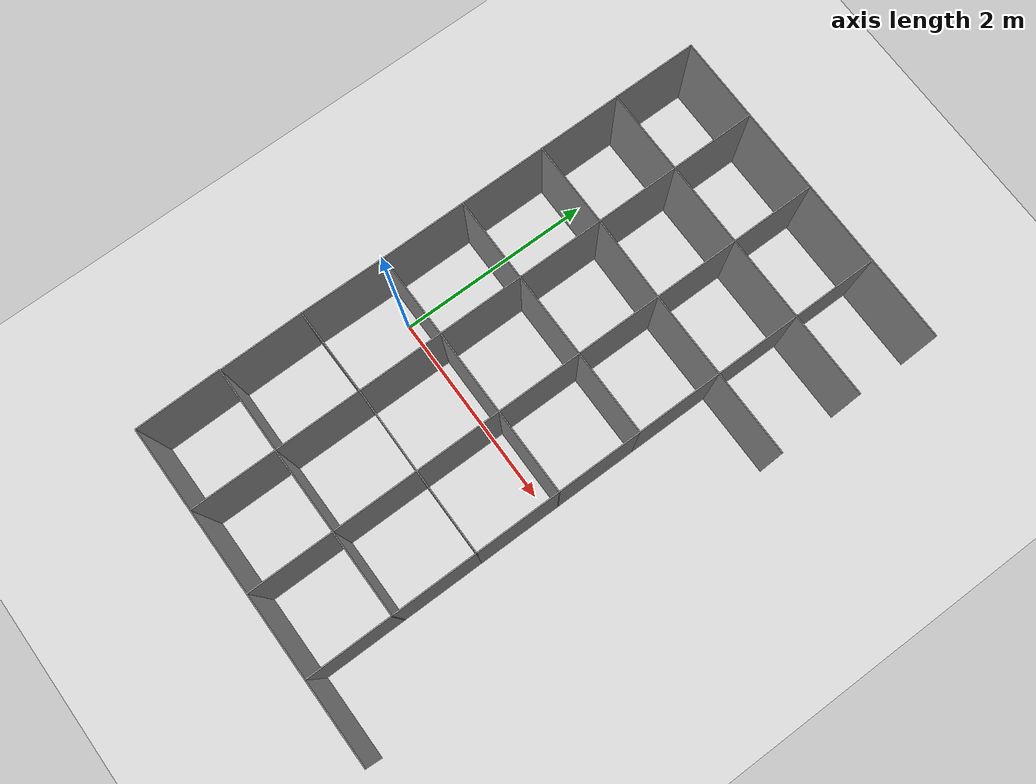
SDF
<sdf version="1.7">
 <world name="default">
  <include><uri>model://sun</uri></include>
  <include><uri>model://ground_plane</uri></include>
  <model name="Template">
   <pose>2.61937 0.534035 0 0 -0 0</pose>
   <link name="Wall_100">
    <collision name="Wall_100_Collision">
     <geometry><box><size>0.86 0.01 1</size></box></geometry>
     <pose>0 0 0.5 0 -0 0</pose>
    </collision>
    <visual name="Wall_100_Visual">
     <pose>0 0 0.5 0 -0 0</pose>
     <geometry><box><size>0.86 0.01 1</size></box></geometry>
     <material>
      <script><uri>file://media/materials/scripts/gazebo.material</uri><name>Gazebo/Grey</name></script>
      <ambient>1 1 1 1</ambient>
     </material>
     <meta><layer>0</layer></meta>
    </visual>
    <pose>-2.54637 0.424965 0 0 -0 0</pose>
   </link>
   <link name="Wall_101">
    <collision name="Wall_101_Collision">
     <geometry><box><size>0.876839 0.01 1</size></box></geometry>
     <pose>0 0 0.5 0 -0 0</pose>
    </collision>
    <visual name="Wall_101_Visual">
     <pose>0 0 0.5 0 -0 0</pose>
     <geometry><box><size>0.876839 0.01 1</size></box></geometry>
     <material>
      <script><uri>file://media/materials/scripts/gazebo.material</uri><name>Gazebo/Grey</name></script>
      <ambient>1 1 1 1</ambient>
     </material>
     <meta><layer>0</layer></meta>
    </visual>
    <pose>-2.12161 0.858205 0 0 -0 1.57135</pose>
   </link>
   <link name="Wall_102">
    <collision name="Wall_102_Collision">
     <geometry><box><size>0.860639 0.01 1</size></box></geometry>
     <pose>0 0 0.5 0 -0 0</pose>
    </collision>
    <visual name="Wall_102_Visual">
     <pose>0 0 0.5 0 -0 0</pose>
     <geometry><box><size>0.860639 0.01 1</size></box></geometry>
     <material>
      <script><uri>file://media/materials/scripts/gazebo.material</uri><name>Gazebo/Grey</name></script>
      <ambient>1 1 1 1</ambient>
     </material>
     <meta><layer>0</layer></meta>
    </visual>
    <pose>-1.69661 1.2832 0 0 -0 -0.019375</pose>
   </link>
   <link name="Wall_103">
    <collision name="Wall_103_Collision">
     <geometry><box><size>0.86 0.01 1</size></box></geometry>
     <pose>0 0 0.5 0 -0 0</pose>
    </collision>
    <visual name="Wall_103_Visual">
     <pose>0 0 0.5 0 -0 0</pose>
     <geometry><box><size>0.86 0.01 1</size></box></geometry>
     <material>
      <script><uri>file://media/materials/scripts/gazebo.material</uri><name>Gazebo/Grey</name></script>
      <ambient>1 1 1 1</ambient>
     </material>
     <meta><layer>0</layer></meta>
    </visual>
    <pose>-1.27137 0.849965 0 0 -0 -1.5708</pose>
   </link>
   <link name="Wall_104">
    <collision name="Wall_104_Collision">
     <geometry><box><size>0.86 0.01 1</size></box></geometry>
     <pose>0 0 0.5 0 -0 0</pose>
    </collision>
    <visual name="Wall_104_Visual">
     <pose>0 0 0.5 0 -0 0</pose>
     <geometry><box><size>0.86 0.01 1</size></box></geometry>
     <material>
      <script><uri>file://media/materials/scripts/gazebo.material</uri><name>Gazebo/Grey</name></script>
      <ambient>1 1 1 1</ambient>
     </material>
     <meta><layer>0</layer></meta>
    </visual>
    <pose>-0.846372 0.424965 0 0 -0 0</pose>
   </link>
   <link name="Wall_105">
    <collision name="Wall_105_Collision">
     <geometry><box><size>0.859555 0.01 1</size></box></geometry>
     <pose>0 0 0.5 0 -0 0</pose>
    </collision>
    <visual name="Wall_105_Visual">
     <pose>0 0 0.5 0 -0 0</pose>
     <geometry><box><size>0.859555 0.01 1</size></box></geometry>
     <material>
      <script><uri>file://media/materials/scripts/gazebo.material</uri><name>Gazebo/Grey</name></script>
      <ambient>1 1 1 1</ambient>
     </material>
     <meta><layer>0</layer></meta>
    </visual>
    <pose>-0.421372 0.849965 0 0 -0 1.5708</pose>
   </link>
   <link name="Wall_106">
    <collision name="Wall_106_Collision">
     <geometry><box><size>0.86 0.01 1</size></box></geometry>
     <pose>0 0 0.5 0 -0 0</pose>
    </collision>
    <visual name="Wall_106_Visual">
     <pose>0 0 0.5 0 -0 0</pose>
     <geometry><box><size>0.86 0.01 1</size></box></geometry>
     <material>
      <script><uri>file://media/materials/scripts/gazebo.material</uri><name>Gazebo/Grey</name></script>
      <ambient>1 1 1 1</ambient>
     </material>
     <meta><layer>0</layer></meta>
    </visual>
    <pose>0.003628 1.27496 0 0 -0 0</pose>
   </link>
   <link name="Wall_121">
    <collision name="Wall_121_Collision">
     <geometry><box><size>0.86 0.01 1</size></box></geometry>
     <pose>0 0 0.5 0 -0 0</pose>
    </collision>
    <visual name="Wall_121_Visual">
     <pose>0 0 0.5 0 -0 0</pose>
     <geometry><box><size>0.86 0.01 1</size></box></geometry>
     <material>
      <script><uri>file://media/materials/scripts/gazebo.material</uri><name>Gazebo/Grey</name></script>
      <ambient>1 1 1 1</ambient>
     </material>
     <meta><layer>0</layer></meta>
    </visual>
    <pose>0.003628 2.12496 0 0 -0 3.14159</pose>
   </link>
   <link name="Wall_122">
    <collision name="Wall_122_Collision">
     <geometry><box><size>0.86 0.01 1</size></box></geometry>
     <pose>0 0 0.5 0 -0 0</pose>
    </collision>
    <visual name="Wall_122_Visual">
     <pose>0 0 0.5 0 -0 0</pose>
     <geometry><box><size>0.86 0.01 1</size></box></geometry>
     <material>
      <script><uri>file://media/materials/scripts/gazebo.material</uri><name>Gazebo/Grey</name></script>
      <ambient>1 1 1 1</ambient>
     </material>
     <meta><layer>0</layer></meta>
    </visual>
    <pose>-0.421372 1.69996 0 0 -0 -1.5708</pose>
   </link>
   <link name="Wall_123">
    <collision name="Wall_123_Collision">
     <geometry><box><size>0.86 0.01 1</size></box></geometry>
     <pose>0 0 0.5 0 -0 0</pose>
    </collision>
    <visual name="Wall_123_Visual">
     <pose>0 0 0.5 0 -0 0</pose>
     <geometry><box><size>0.86 0.01 1</size></box></geometry>
     <material>
      <script><uri>file://media/materials/scripts/gazebo.material</uri><name>Gazebo/Grey</name></script>
      <ambient>1 1 1 1</ambient>
     </material>
     <meta><layer>0</layer></meta>
    </visual>
    <pose>-0.846372 1.27496 0 0 -0 3.14159</pose>
   </link>
   <link name="Wall_124">
    <collision name="Wall_124_Collision">
     <geometry><box><size>0.859555 0.01 1</size></box></geometry>
     <pose>0 0 0.5 0 -0 0</pose>
    </collision>
    <visual name="Wall_124_Visual">
     <pose>0 0 0.5 0 -0 0</pose>
     <geometry><box><size>0.859555 0.01 1</size></box></geometry>
     <material>
      <script><uri>file://media/materials/scripts/gazebo.material</uri><name>Gazebo/Grey</name></script>
      <ambient>1 1 1 1</ambient>
     </material>
     <meta><layer>0</layer></meta>
    </visual>
    <pose>-1.27137 1.69996 0 0 -0 1.5708</pose>
   </link>
   <link name="Wall_125">
    <collision name="Wall_125_Collision">
     <geometry><box><size>0.86 0.01 1</size></box></geometry>
     <pose>0 0 0.5 0 -0 0</pose>
    </collision>
    <visual name="Wall_125_Visual">
     <pose>0 0 0.5 0 -0 0</pose>
     <geometry><box><size>0.86 0.01 1</size></box></geometry>
     <material>
      <script><uri>file://media/materials/scripts/gazebo.material</uri><name>Gazebo/Grey</name></script>
      <ambient>1 1 1 1</ambient>
     </material>
     <meta><layer>0</layer></meta>
    </visual>
    <pose>-1.69637 2.12496 0 0 -0 3.14159</pose>
   </link>
   <link name="Wall_126">
    <collision name="Wall_126_Collision">
     <geometry><box><size>0.843894 0.01 1</size></box></geometry>
     <pose>0 0 0.5 0 -0 0</pose>
    </collision>
    <visual name="Wall_126_Visual">
     <pose>0 0 0.5 0 -0 0</pose>
     <geometry><box><size>0.843894 0.01 1</size></box></geometry>
     <material>
      <script><uri>file://media/materials/scripts/gazebo.material</uri><name>Gazebo/Grey</name></script>
      <ambient>1 1 1 1</ambient>
     </material>
     <meta><layer>0</layer></meta>
    </visual>
    <pose>-2.12161 1.7082 0 0 -0 -1.57137</pose>
   </link>
   <link name="Wall_127">
    <collision name="Wall_127_Collision">
     <geometry><box><size>0.868 0.01 1</size></box></geometry>
     <pose>0 0 0.5 0 -0 0</pose>
    </collision>
    <visual name="Wall_127_Visual">
     <pose>0 0 0.5 0 -0 0</pose>
     <geometry><box><size>0.868 0.01 1</size></box></geometry>
     <material>
      <script><uri>file://media/materials/scripts/gazebo.material</uri><name>Gazebo/Grey</name></script>
      <ambient>1 1 1 1</ambient>
     </material>
     <meta><layer>0</layer></meta>
    </visual>
    <pose>-2.54237 1.2912 0 0 -0 -3.14103</pose>
   </link>
   <link name="Wall_129">
    <collision name="Wall_129_Collision">
     <geometry><box><size>0.86 0.01 1</size></box></geometry>
     <pose>0 0 0.5 0 -0 0</pose>
    </collision>
    <visual name="Wall_129_Visual">
     <pose>0 0 0.5 0 -0 0</pose>
     <geometry><box><size>0.86 0.01 1</size></box></geometry>
     <material>
      <script><uri>file://media/materials/scripts/gazebo.material</uri><name>Gazebo/Grey</name></script>
      <ambient>1 1 1 1</ambient>
     </material>
     <meta><layer>0</layer></meta>
    </visual>
    <pose>-2.54637 2.12496 0 0 -0 0</pose>
   </link>
   <link name="Wall_130">
    <collision name="Wall_130_Collision">
     <geometry><box><size>0.86 0.01 1</size></box></geometry>
     <pose>0 0 0.5 0 -0 0</pose>
    </collision>
    <visual name="Wall_130_Visual">
     <pose>0 0 0.5 0 -0 0</pose>
     <geometry><box><size>0.86 0.01 1</size></box></geometry>
     <material>
      <script><uri>file://media/materials/scripts/gazebo.material</uri><name>Gazebo/Grey</name></script>
      <ambient>1 1 1 1</ambient>
     </material>
     <meta><layer>0</layer></meta>
    </visual>
    <pose>-2.12137 2.54996 0 0 -0 1.5708</pose>
   </link>
   <link name="Wall_132">
    <collision name="Wall_132_Collision">
     <geometry><box><size>0.86 0.01 1</size></box></geometry>
     <pose>0 0 0.5 0 -0 0</pose>
    </collision>
    <visual name="Wall_132_Visual">
     <pose>0 0 0.5 0 -0 0</pose>
     <geometry><box><size>0.86 0.01 1</size></box></geometry>
     <material>
      <script><uri>file://media/materials/scripts/gazebo.material</uri><name>Gazebo/Grey</name></script>
      <ambient>1 1 1 1</ambient>
     </material>
     <meta><layer>0</layer></meta>
    </visual>
    <pose>-1.27137 2.54996 0 0 -0 -1.5708</pose>
   </link>
   <link name="Wall_133">
    <collision name="Wall_133_Collision">
     <geometry><box><size>0.86 0.01 1</size></box></geometry>
     <pose>0 0 0.5 0 -0 0</pose>
    </collision>
    <visual name="Wall_133_Visual">
     <pose>0 0 0.5 0 -0 0</pose>
     <geometry><box><size>0.86 0.01 1</size></box></geometry>
     <material>
      <script><uri>file://media/materials/scripts/gazebo.material</uri><name>Gazebo/Grey</name></script>
      <ambient>1 1 1 1</ambient>
     </material>
     <meta><layer>0</layer></meta>
    </visual>
    <pose>-0.846372 2.12496 0 0 -0 0</pose>
   </link>
   <link name="Wall_134">
    <collision name="Wall_134_Collision">
     <geometry><box><size>0.86 0.01 1</size></box></geometry>
     <pose>0 0 0.5 0 -0 0</pose>
    </collision>
    <visual name="Wall_134_Visual">
     <pose>0 0 0.5 0 -0 0</pose>
     <geometry><box><size>0.86 0.01 1</size></box></geometry>
     <material>
      <script><uri>file://media/materials/scripts/gazebo.material</uri><name>Gazebo/Grey</name></script>
      <ambient>1 1 1 1</ambient>
     </material>
     <meta><layer>0</layer></meta>
    </visual>
    <pose>-0.421372 2.54996 0 0 -0 1.5708</pose>
   </link>
   <link name="Wall_146">
    <collision name="Wall_146_Collision">
     <geometry><box><size>0.86 0.01 1</size></box></geometry>
     <pose>0 0 0.5 0 -0 0</pose>
    </collision>
    <visual name="Wall_146_Visual">
     <pose>0 0 0.5 0 -0 0</pose>
     <geometry><box><size>0.86 0.01 1</size></box></geometry>
     <material>
      <script><uri>file://media/materials/scripts/gazebo.material</uri><name>Gazebo/Grey</name></script>
      <ambient>1 1 1 1</ambient>
     </material>
     <meta><layer>0</layer></meta>
    </visual>
    <pose>0.003628 2.97497 0 0 -0 3.14159</pose>
   </link>
   <link name="Wall_147">
    <collision name="Wall_147_Collision">
     <geometry><box><size>0.86 0.01 1</size></box></geometry>
     <pose>0 0 0.5 0 -0 0</pose>
    </collision>
    <visual name="Wall_147_Visual">
     <pose>0 0 0.5 0 -0 0</pose>
     <geometry><box><size>0.86 0.01 1</size></box></geometry>
     <material>
      <script><uri>file://media/materials/scripts/gazebo.material</uri><name>Gazebo/Grey</name></script>
      <ambient>1 1 1 1</ambient>
     </material>
     <meta><layer>0</layer></meta>
    </visual>
    <pose>-0.846372 2.97497 0 0 -0 3.14159</pose>
   </link>
   <link name="Wall_148">
    <collision name="Wall_148_Collision">
     <geometry><box><size>0.86 0.01 1</size></box></geometry>
     <pose>0 0 0.5 0 -0 0</pose>
    </collision>
    <visual name="Wall_148_Visual">
     <pose>0 0 0.5 0 -0 0</pose>
     <geometry><box><size>0.86 0.01 1</size></box></geometry>
     <material>
      <script><uri>file://media/materials/scripts/gazebo.material</uri><name>Gazebo/Grey</name></script>
      <ambient>1 1 1 1</ambient>
     </material>
     <meta><layer>0</layer></meta>
    </visual>
    <pose>-1.69637 2.97497 0 0 -0 3.14159</pose>
   </link>
   <link name="Wall_149">
    <collision name="Wall_149_Collision">
     <geometry><box><size>0.86 0.01 1</size></box></geometry>
     <pose>0 0 0.5 0 -0 0</pose>
    </collision>
    <visual name="Wall_149_Visual">
     <pose>0 0 0.5 0 -0 0</pose>
     <geometry><box><size>0.86 0.01 1</size></box></geometry>
     <material>
      <script><uri>file://media/materials/scripts/gazebo.material</uri><name>Gazebo/Grey</name></script>
      <ambient>1 1 1 1</ambient>
     </material>
     <meta><layer>0</layer></meta>
    </visual>
    <pose>-2.54637 2.97497 0 0 -0 3.14159</pose>
   </link>
   <link name="Wall_150">
    <collision name="Wall_150_Collision">
     <geometry><box><size>0.86 0.01 1</size></box></geometry>
     <pose>0 0 0.5 0 -0 0</pose>
    </collision>
    <visual name="Wall_150_Visual">
     <pose>0 0 0.5 0 -0 0</pose>
     <geometry><box><size>0.86 0.01 1</size></box></geometry>
     <material>
      <script><uri>file://media/materials/scripts/gazebo.material</uri><name>Gazebo/Grey</name></script>
      <ambient>1 1 1 1</ambient>
     </material>
     <meta><layer>0</layer></meta>
    </visual>
    <pose>-2.97137 2.54996 0 0 -0 -1.5708</pose>
   </link>
   <link name="Wall_151">
    <collision name="Wall_151_Collision">
     <geometry><box><size>0.84352 0.01 1</size></box></geometry>
     <pose>0 0 0.5 0 -0 0</pose>
    </collision>
    <visual name="Wall_151_Visual">
     <pose>0 0 0.5 0 -0 0</pose>
     <geometry><box><size>0.84352 0.01 1</size></box></geometry>
     <material>
      <script><uri>file://media/materials/scripts/gazebo.material</uri><name>Gazebo/Grey</name></script>
      <ambient>1 1 1 1</ambient>
     </material>
     <meta><layer>0</layer></meta>
    </visual>
    <pose>-2.97137 1.70796 0 0 -0 -1.5708</pose>
   </link>
   <link name="Wall_152">
    <collision name="Wall_152_Collision">
     <geometry><box><size>0.876839 0.01 1</size></box></geometry>
     <pose>0 0 0.5 0 -0 0</pose>
    </collision>
    <visual name="Wall_152_Visual">
     <pose>0 0 0.5 0 -0 0</pose>
     <geometry><box><size>0.876839 0.01 1</size></box></geometry>
     <material>
      <script><uri>file://media/materials/scripts/gazebo.material</uri><name>Gazebo/Grey</name></script>
      <ambient>1 1 1 1</ambient>
     </material>
     <meta><layer>0</layer></meta>
    </visual>
    <pose>-2.97137 0.857965 0 0 -0 -1.5708</pose>
   </link>
   <link name="Wall_153">
    <collision name="Wall_153_Collision">
     <geometry><box><size>0.86 0.01 1</size></box></geometry>
     <pose>0 0 0.5 0 -0 0</pose>
    </collision>
    <visual name="Wall_153_Visual">
     <pose>0 0 0.5 0 -0 0</pose>
     <geometry><box><size>0.86 0.01 1</size></box></geometry>
     <material>
      <script><uri>file://media/materials/scripts/gazebo.material</uri><name>Gazebo/Grey</name></script>
      <ambient>1 1 1 1</ambient>
     </material>
     <meta><layer>0</layer></meta>
    </visual>
    <pose>-2.97137 -3.5e-05 0 0 -0 -1.5708</pose>
   </link>
   <link name="Wall_154">
    <collision name="Wall_154_Collision">
     <geometry><box><size>0.865 0.01 1</size></box></geometry>
     <pose>0 0 0.5 0 -0 0</pose>
    </collision>
    <visual name="Wall_154_Visual">
     <pose>0 0 0.5 0 -0 0</pose>
     <geometry><box><size>0.865 0.01 1</size></box></geometry>
     <material>
      <script><uri>file://media/materials/scripts/gazebo.material</uri><name>Gazebo/Grey</name></script>
      <ambient>1 1 1 1</ambient>
     </material>
     <meta><layer>0</layer></meta>
    </visual>
    <pose>-2.97687 -0.852535 0 0 -0 -1.58366</pose>
   </link>
   <link name="Wall_155">
    <collision name="Wall_155_Collision">
     <geometry><box><size>0.850094 0.01 1</size></box></geometry>
     <pose>0 0 0.5 0 -0 0</pose>
    </collision>
    <visual name="Wall_155_Visual">
     <pose>0 0 0.5 0 -0 0</pose>
     <geometry><box><size>0.850094 0.01 1</size></box></geometry>
     <material>
      <script><uri>file://media/materials/scripts/gazebo.material</uri><name>Gazebo/Grey</name></script>
      <ambient>1 1 1 1</ambient>
     </material>
     <meta><layer>0</layer></meta>
    </visual>
    <pose>-2.97968 -1.70003 0 0 -0 -1.56438</pose>
   </link>
   <link name="Wall_156">
    <collision name="Wall_156_Collision">
     <geometry><box><size>0.865 0.01 1</size></box></geometry>
     <pose>0 0 0.5 0 -0 0</pose>
    </collision>
    <visual name="Wall_156_Visual">
     <pose>0 0 0.5 0 -0 0</pose>
     <geometry><box><size>0.865 0.01 1</size></box></geometry>
     <material>
      <script><uri>file://media/materials/scripts/gazebo.material</uri><name>Gazebo/Grey</name></script>
      <ambient>1 1 1 1</ambient>
     </material>
     <meta><layer>0</layer></meta>
    </visual>
    <pose>-2.97698 -2.54753 0 0 -0 -1.55768</pose>
   </link>
   <link name="Wall_157">
    <collision name="Wall_157_Collision">
     <geometry><box><size>0.860147 0.01 1</size></box></geometry>
     <pose>0 0 0.5 0 -0 0</pose>
    </collision>
    <visual name="Wall_157_Visual">
     <pose>0 0 0.5 0 -0 0</pose>
     <geometry><box><size>0.860147 0.01 1</size></box></geometry>
     <material>
      <script><uri>file://media/materials/scripts/gazebo.material</uri><name>Gazebo/Grey</name></script>
      <ambient>1 1 1 1</ambient>
     </material>
     <meta><layer>0</layer></meta>
    </visual>
    <pose>-2.54637 -2.97504 0 0 -0 0</pose>
   </link>
   <link name="Wall_158">
    <collision name="Wall_158_Collision">
     <geometry><box><size>0.860147 0.01 1</size></box></geometry>
     <pose>0 0 0.5 0 -0 0</pose>
    </collision>
    <visual name="Wall_158_Visual">
     <pose>0 0 0.5 0 -0 0</pose>
     <geometry><box><size>0.860147 0.01 1</size></box></geometry>
     <material>
      <script><uri>file://media/materials/scripts/gazebo.material</uri><name>Gazebo/Grey</name></script>
      <ambient>1 1 1 1</ambient>
     </material>
     <meta><layer>0</layer></meta>
    </visual>
    <pose>-1.69637 -2.97504 0 0 -0 0</pose>
   </link>
   <link name="Wall_159">
    <collision name="Wall_159_Collision">
     <geometry><box><size>0.860147 0.01 1</size></box></geometry>
     <pose>0 0 0.5 0 -0 0</pose>
    </collision>
    <visual name="Wall_159_Visual">
     <pose>0 0 0.5 0 -0 0</pose>
     <geometry><box><size>0.860147 0.01 1</size></box></geometry>
     <material>
      <script><uri>file://media/materials/scripts/gazebo.material</uri><name>Gazebo/Grey</name></script>
      <ambient>1 1 1 1</ambient>
     </material>
     <meta><layer>0</layer></meta>
    </visual>
    <pose>-0.846372 -2.97504 0 0 -0 0</pose>
   </link>
   <link name="Wall_160">
    <collision name="Wall_160_Collision">
     <geometry><box><size>0.860147 0.01 1</size></box></geometry>
     <pose>0 0 0.5 0 -0 0</pose>
    </collision>
    <visual name="Wall_160_Visual">
     <pose>0 0 0.5 0 -0 0</pose>
     <geometry><box><size>0.860147 0.01 1</size></box></geometry>
     <material>
      <script><uri>file://media/materials/scripts/gazebo.material</uri><name>Gazebo/Grey</name></script>
      <ambient>1 1 1 1</ambient>
     </material>
     <meta><layer>0</layer></meta>
    </visual>
    <pose>0.003628 -2.97504 0 0 -0 0</pose>
   </link>
   <link name="Wall_45">
    <collision name="Wall_45_Collision">
     <geometry><box><size>0.859 0.01 1</size></box></geometry>
     <pose>0 0 0.5 0 -0 0</pose>
    </collision>
    <visual name="Wall_45_Visual">
     <pose>0 0 0.5 0 -0 0</pose>
     <geometry><box><size>0.859 0.01 1</size></box></geometry>
     <material>
      <script><uri>file://media/materials/scripts/gazebo.material</uri><name>Gazebo/Grey</name></script>
      <ambient>1 1 1 1</ambient>
     </material>
     <meta><layer>0</layer></meta>
    </visual>
    <pose>-2.12137 -2.55053 0 0 -0 1.5708</pose>
   </link>
   <link name="Wall_46">
    <collision name="Wall_46_Collision">
     <geometry><box><size>0.860014 0.01 1</size></box></geometry>
     <pose>0 0 0.5 0 -0 0</pose>
    </collision>
    <visual name="Wall_46_Visual">
     <pose>0 0 0.5 0 -0 0</pose>
     <geometry><box><size>0.860014 0.01 1</size></box></geometry>
     <material>
      <script><uri>file://media/materials/scripts/gazebo.material</uri><name>Gazebo/Grey</name></script>
      <ambient>1 1 1 1</ambient>
     </material>
     <meta><layer>0</layer></meta>
    </visual>
    <pose>-1.69637 -2.12554 0 0 -0 0.001176</pose>
   </link>
   <link name="Wall_47">
    <collision name="Wall_47_Collision">
     <geometry><box><size>0.86 0.01 1</size></box></geometry>
     <pose>0 0 0.5 0 -0 0</pose>
    </collision>
    <visual name="Wall_47_Visual">
     <pose>0 0 0.5 0 -0 0</pose>
     <geometry><box><size>0.86 0.01 1</size></box></geometry>
     <material>
      <script><uri>file://media/materials/scripts/gazebo.material</uri><name>Gazebo/Grey</name></script>
      <ambient>1 1 1 1</ambient>
     </material>
     <meta><layer>0</layer></meta>
    </visual>
    <pose>-1.27137 -2.55003 0 0 -0 -1.5708</pose>
   </link>
   <link name="Wall_49">
    <collision name="Wall_49_Collision">
     <geometry><box><size>0.859555 0.01 1</size></box></geometry>
     <pose>0 0 0.5 0 -0 0</pose>
    </collision>
    <visual name="Wall_49_Visual">
     <pose>0 0 0.5 0 -0 0</pose>
     <geometry><box><size>0.859555 0.01 1</size></box></geometry>
     <material>
      <script><uri>file://media/materials/scripts/gazebo.material</uri><name>Gazebo/Grey</name></script>
      <ambient>1 1 1 1</ambient>
     </material>
     <meta><layer>0</layer></meta>
    </visual>
    <pose>-0.421372 -2.55003 0 0 -0 1.5708</pose>
   </link>
   <link name="Wall_65">
    <collision name="Wall_65_Collision">
     <geometry><box><size>0.86 0.01 1</size></box></geometry>
     <pose>0 0 0.5 0 -0 0</pose>
    </collision>
    <visual name="Wall_65_Visual">
     <pose>0 0 0.5 0 -0 0</pose>
     <geometry><box><size>0.86 0.01 1</size></box></geometry>
     <material>
      <script><uri>file://media/materials/scripts/gazebo.material</uri><name>Gazebo/Grey</name></script>
      <ambient>1 1 1 1</ambient>
     </material>
     <meta><layer>0</layer></meta>
    </visual>
    <pose>-0.421372 -1.70003 0 0 -0 -1.5708</pose>
   </link>
   <link name="Wall_66">
    <collision name="Wall_66_Collision">
     <geometry><box><size>0.86 0.01 1</size></box></geometry>
     <pose>0 0 0.5 0 -0 0</pose>
    </collision>
    <visual name="Wall_66_Visual">
     <pose>0 0 0.5 0 -0 0</pose>
     <geometry><box><size>0.86 0.01 1</size></box></geometry>
     <material>
      <script><uri>file://media/materials/scripts/gazebo.material</uri><name>Gazebo/Grey</name></script>
      <ambient>1 1 1 1</ambient>
     </material>
     <meta><layer>0</layer></meta>
    </visual>
    <pose>-0.846372 -2.12504 0 0 -0 3.14159</pose>
   </link>
   <link name="Wall_67">
    <collision name="Wall_67_Collision">
     <geometry><box><size>0.859555 0.01 1</size></box></geometry>
     <pose>0 0 0.5 0 -0 0</pose>
    </collision>
    <visual name="Wall_67_Visual">
     <pose>0 0 0.5 0 -0 0</pose>
     <geometry><box><size>0.859555 0.01 1</size></box></geometry>
     <material>
      <script><uri>file://media/materials/scripts/gazebo.material</uri><name>Gazebo/Grey</name></script>
      <ambient>1 1 1 1</ambient>
     </material>
     <meta><layer>0</layer></meta>
    </visual>
    <pose>-1.27137 -1.70003 0 0 -0 1.5708</pose>
   </link>
   <link name="Wall_68">
    <collision name="Wall_68_Collision">
     <geometry><box><size>0.860029 0.01 1</size></box></geometry>
     <pose>0 0 0.5 0 -0 0</pose>
    </collision>
    <visual name="Wall_68_Visual">
     <pose>0 0 0.5 0 -0 0</pose>
     <geometry><box><size>0.860029 0.01 1</size></box></geometry>
     <material>
      <script><uri>file://media/materials/scripts/gazebo.material</uri><name>Gazebo/Grey</name></script>
      <ambient>1 1 1 1</ambient>
     </material>
     <meta><layer>0</layer></meta>
    </visual>
    <pose>-1.69637 -1.27154 0 0 -0 3.13336</pose>
   </link>
   <link name="Wall_69">
    <collision name="Wall_69_Collision">
     <geometry><box><size>0.868 0.01 1</size></box></geometry>
     <pose>0 0 0.5 0 -0 0</pose>
    </collision>
    <visual name="Wall_69_Visual">
     <pose>0 0 0.5 0 -0 0</pose>
     <geometry><box><size>0.868 0.01 1</size></box></geometry>
     <material>
      <script><uri>file://media/materials/scripts/gazebo.material</uri><name>Gazebo/Grey</name></script>
      <ambient>1 1 1 1</ambient>
     </material>
     <meta><layer>0</layer></meta>
    </visual>
    <pose>-2.12137 -1.69704 0 0 -0 -1.5708</pose>
   </link>
   <link name="Wall_70">
    <collision name="Wall_70_Collision">
     <geometry><box><size>0.871235 0.01 1</size></box></geometry>
     <pose>0 0 0.5 0 -0 0</pose>
    </collision>
    <visual name="Wall_70_Visual">
     <pose>0 0 0.5 0 -0 0</pose>
     <geometry><box><size>0.871235 0.01 1</size></box></geometry>
     <material>
      <script><uri>file://media/materials/scripts/gazebo.material</uri><name>Gazebo/Grey</name></script>
      <ambient>1 1 1 1</ambient>
     </material>
     <meta><layer>0</layer></meta>
    </visual>
    <pose>-2.55198 -2.12303 0 0 -0 3.13463</pose>
   </link>
   <link name="Wall_72">
    <collision name="Wall_72_Collision">
     <geometry><box><size>0.871243 0.01 1</size></box></geometry>
     <pose>0 0 0.5 0 -0 0</pose>
    </collision>
    <visual name="Wall_72_Visual">
     <pose>0 0 0.5 0 -0 0</pose>
     <geometry><box><size>0.871243 0.01 1</size></box></geometry>
     <material>
      <script><uri>file://media/materials/scripts/gazebo.material</uri><name>Gazebo/Grey</name></script>
      <ambient>1 1 1 1</ambient>
     </material>
     <meta><layer>0</layer></meta>
    </visual>
    <pose>-2.55187 -1.27404 0 0 -0 0.013936</pose>
   </link>
   <link name="Wall_73">
    <collision name="Wall_73_Collision">
     <geometry><box><size>0.852555 0.01 1</size></box></geometry>
     <pose>0 0 0.5 0 -0 0</pose>
    </collision>
    <visual name="Wall_73_Visual">
     <pose>0 0 0.5 0 -0 0</pose>
     <geometry><box><size>0.852555 0.01 1</size></box></geometry>
     <material>
      <script><uri>file://media/materials/scripts/gazebo.material</uri><name>Gazebo/Grey</name></script>
      <ambient>1 1 1 1</ambient>
     </material>
     <meta><layer>0</layer></meta>
    </visual>
    <pose>-2.12137 -0.846535 0 0 -0 1.5708</pose>
   </link>
   <link name="Wall_74">
    <collision name="Wall_74_Collision">
     <geometry><box><size>0.86 0.01 1</size></box></geometry>
     <pose>0 0 0.5 0 -0 0</pose>
    </collision>
    <visual name="Wall_74_Visual">
     <pose>0 0 0.5 0 -0 0</pose>
     <geometry><box><size>0.86 0.01 1</size></box></geometry>
     <material>
      <script><uri>file://media/materials/scripts/gazebo.material</uri><name>Gazebo/Grey</name></script>
      <ambient>1 1 1 1</ambient>
     </material>
     <meta><layer>0</layer></meta>
    </visual>
    <pose>-1.69637 -0.425035 0 0 -0 0</pose>
   </link>
   <link name="Wall_75">
    <collision name="Wall_75_Collision">
     <geometry><box><size>0.86 0.01 1</size></box></geometry>
     <pose>0 0 0.5 0 -0 0</pose>
    </collision>
    <visual name="Wall_75_Visual">
     <pose>0 0 0.5 0 -0 0</pose>
     <geometry><box><size>0.86 0.01 1</size></box></geometry>
     <material>
      <script><uri>file://media/materials/scripts/gazebo.material</uri><name>Gazebo/Grey</name></script>
      <ambient>1 1 1 1</ambient>
     </material>
     <meta><layer>0</layer></meta>
    </visual>
    <pose>-1.27137 -0.850035 0 0 -0 -1.5708</pose>
   </link>
   <link name="Wall_76">
    <collision name="Wall_76_Collision">
     <geometry><box><size>0.86 0.01 1</size></box></geometry>
     <pose>0 0 0.5 0 -0 0</pose>
    </collision>
    <visual name="Wall_76_Visual">
     <pose>0 0 0.5 0 -0 0</pose>
     <geometry><box><size>0.86 0.01 1</size></box></geometry>
     <material>
      <script><uri>file://media/materials/scripts/gazebo.material</uri><name>Gazebo/Grey</name></script>
      <ambient>1 1 1 1</ambient>
     </material>
     <meta><layer>0</layer></meta>
    </visual>
    <pose>-0.846372 -1.27503 0 0 -0 0</pose>
   </link>
   <link name="Wall_77">
    <collision name="Wall_77_Collision">
     <geometry><box><size>0.859555 0.01 1</size></box></geometry>
     <pose>0 0 0.5 0 -0 0</pose>
    </collision>
    <visual name="Wall_77_Visual">
     <pose>0 0 0.5 0 -0 0</pose>
     <geometry><box><size>0.859555 0.01 1</size></box></geometry>
     <material>
      <script><uri>file://media/materials/scripts/gazebo.material</uri><name>Gazebo/Grey</name></script>
      <ambient>1 1 1 1</ambient>
     </material>
     <meta><layer>0</layer></meta>
    </visual>
    <pose>-0.421372 -0.850035 0 0 -0 1.5708</pose>
   </link>
   <link name="Wall_93">
    <collision name="Wall_93_Collision">
     <geometry><box><size>0.86 0.01 1</size></box></geometry>
     <pose>0 0 0.5 0 -0 0</pose>
    </collision>
    <visual name="Wall_93_Visual">
     <pose>0 0 0.5 0 -0 0</pose>
     <geometry><box><size>0.86 0.01 1</size></box></geometry>
     <material>
      <script><uri>file://media/materials/scripts/gazebo.material</uri><name>Gazebo/Grey</name></script>
      <ambient>1 1 1 1</ambient>
     </material>
     <meta><layer>0</layer></meta>
    </visual>
    <pose>-0.421372 -3.5e-05 0 0 -0 -1.5708</pose>
   </link>
   <link name="Wall_94">
    <collision name="Wall_94_Collision">
     <geometry><box><size>0.86 0.01 1</size></box></geometry>
     <pose>0 0 0.5 0 -0 0</pose>
    </collision>
    <visual name="Wall_94_Visual">
     <pose>0 0 0.5 0 -0 0</pose>
     <geometry><box><size>0.86 0.01 1</size></box></geometry>
     <material>
      <script><uri>file://media/materials/scripts/gazebo.material</uri><name>Gazebo/Grey</name></script>
      <ambient>1 1 1 1</ambient>
     </material>
     <meta><layer>0</layer></meta>
    </visual>
    <pose>-0.846372 -0.425035 0 0 -0 3.14159</pose>
   </link>
   <link name="Wall_95">
    <collision name="Wall_95_Collision">
     <geometry><box><size>0.86 0.01 1</size></box></geometry>
     <pose>0 0 0.5 0 -0 0</pose>
    </collision>
    <visual name="Wall_95_Visual">
     <pose>0 0 0.5 0 -0 0</pose>
     <geometry><box><size>0.86 0.01 1</size></box></geometry>
     <material>
      <script><uri>file://media/materials/scripts/gazebo.material</uri><name>Gazebo/Grey</name></script>
      <ambient>1 1 1 1</ambient>
     </material>
     <meta><layer>0</layer></meta>
    </visual>
    <pose>-1.27137 -3.5e-05 0 0 -0 1.5708</pose>
   </link>
   <link name="Wall_96">
    <collision name="Wall_96_Collision">
     <geometry><box><size>0.86 0.01 1</size></box></geometry>
     <pose>0 0 0.5 0 -0 0</pose>
    </collision>
    <visual name="Wall_96_Visual">
     <pose>0 0 0.5 0 -0 0</pose>
     <geometry><box><size>0.86 0.01 1</size></box></geometry>
     <material>
      <script><uri>file://media/materials/scripts/gazebo.material</uri><name>Gazebo/Grey</name></script>
      <ambient>1 1 1 1</ambient>
     </material>
     <meta><layer>0</layer></meta>
    </visual>
    <pose>-1.69637 0.424965 0 0 -0 3.14159</pose>
   </link>
   <link name="Wall_97">
    <collision name="Wall_97_Collision">
     <geometry><box><size>0.86 0.01 1</size></box></geometry>
     <pose>0 0 0.5 0 -0 0</pose>
    </collision>
    <visual name="Wall_97_Visual">
     <pose>0 0 0.5 0 -0 0</pose>
     <geometry><box><size>0.86 0.01 1</size></box></geometry>
     <material>
      <script><uri>file://media/materials/scripts/gazebo.material</uri><name>Gazebo/Grey</name></script>
      <ambient>1 1 1 1</ambient>
     </material>
     <meta><layer>0</layer></meta>
    </visual>
    <pose>-2.12137 -3.5e-05 0 0 -0 -1.5708</pose>
   </link>
   <link name="Wall_98">
    <collision name="Wall_98_Collision">
     <geometry><box><size>0.86 0.01 1</size></box></geometry>
     <pose>0 0 0.5 0 -0 0</pose>
    </collision>
    <visual name="Wall_98_Visual">
     <pose>0 0 0.5 0 -0 0</pose>
     <geometry><box><size>0.86 0.01 1</size></box></geometry>
     <material>
      <script><uri>file://media/materials/scripts/gazebo.material</uri><name>Gazebo/Grey</name></script>
      <ambient>1 1 1 1</ambient>
     </material>
     <meta><layer>0</layer></meta>
    </visual>
    <pose>-2.54637 -0.425035 0 0 -0 3.14159</pose>
   </link>
   <static>1</static>
  </model>
 </world>
</sdf>
